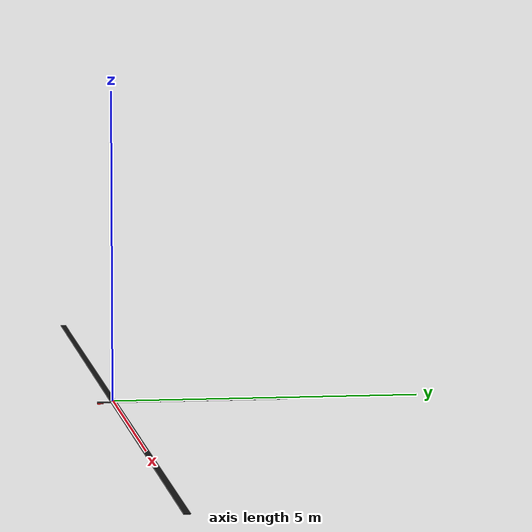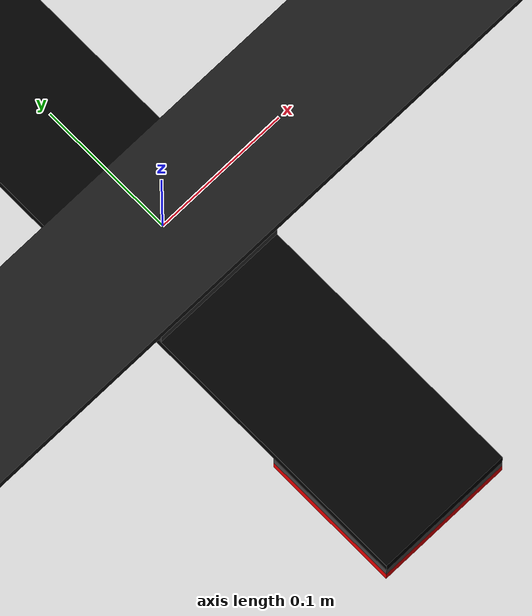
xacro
<?xml version="1.0"?>
<robot name="ceiling_robot" xmlns:xacro="http://wiki.ros.org/xacro">

	<xacro:arg name="prefix" default="" />
	<xacro:arg name="hardware_interface" default="PositionJointInterface"/>

	<xacro:property name="PI" value="3.1415926535897931" />

	<xacro:include filename="$(find ceiling_arm_description)/urdf/ceiling_base.urdf.xacro" />

	<link name="world">
	</link>

	<xacro:ceiling_base prefix="$(arg prefix)" parent="world" hardware_interface="$(arg hardware_interface)" >
		<origin xyz="0.0 0.0 0.0" rpy="0.0 0.0 0.0"/>
	</xacro:ceiling_base>

	<xacro:ros_control />

</robot>

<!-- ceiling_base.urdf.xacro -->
<robot name="robot_ceiling_base" xmlns:xacro="http://wiki.ros.org/xacro">

    <xacro:property name="PI" value="3.1415926535897931" />

    <xacro:macro name="ceiling_base" params="prefix parent hardware_interface:=PositionJointInterface *origin">

        <link name="${prefix}base_long_link">
            <inertial>
                <mass value="1.0" />
                <origin xyz="0 0 0" />
                <inertia ixx="1" ixy="0" ixz="0.0" iyy="0.02" iyz="0.0" izz="0.02" />
            </inertial>
            <visual>
                <origin xyz="0 0 0" rpy="0 0 0" />
                <geometry>
                    <box size="20.0 0.1 0.01" />
                </geometry>
                <material name="Grey">
                    <color rgba="0.1 0.1 0.1 1" />
                </material>
            </visual>
            <collision>
                <origin xyz="0 0 0" rpy="0 0 0 " />
                <geometry>
                    <box size="20.0 0.1 0.01" />
                </geometry>
            </collision>
        </link>

        <gazebo reference="${prefix}base_long_link">
            <material>Gazebo/Gray</material>
        </gazebo>

        <link name="${prefix}long_link">
            <inertial>
                <mass value="1.0" />
                <origin xyz="0 0 0" />
                <inertia ixx="0.02" ixy="0" ixz="0.0" iyy="0.02" iyz="0.0" izz="0.02" />
            </inertial>
            <visual>
                <origin xyz="0 0 0" rpy="0 0 0" />
                <geometry>
                    <box size="0.1 0.1 0.01" />
                </geometry>
                <material name="Grey2">
                    <color rgba="0.2 0.2 0.2 1" />
                </material>
            </visual>
            <collision>
                <origin xyz="0 0 0" rpy="0 0 0 " />
                <geometry>
                    <box size="0.1 0.1 0.01" />
                </geometry>
            </collision>
        </link>

        <link name="${prefix}base_short_link">
            <inertial>
                <mass value="1.0" />
                <origin xyz="0 0 0" />
                <inertia ixx="0.5" ixy="0" ixz="0.0" iyy="0.02" iyz="0.0" izz="0.02" />
            </inertial>
            <visual>
                <origin xyz="1.3 0 0" rpy="0 0 0" />
                <geometry>
                    <box size="3.1 0.1 0.01" />
                </geometry>
                <material name="Grey">
                    <color rgba="0.0 0.0 0.0 1" />
                </material>
            </visual>
            <collision>
                <origin xyz="1.3 0 0" rpy="0 0 0 " />
                <geometry>
                    <box size="3.1 0.1 0.01" />
                </geometry>
            </collision>
        </link>

        <gazebo reference="${prefix}base_short_link">
            <material>Gazebo/Gray</material>
        </gazebo>

        <link name="${prefix}short_link">
            <inertial>
                <mass value="1.0" />
                <origin xyz="0 0 0" />
                <inertia ixx="0.5" ixy="0" ixz="0.0" iyy="0.02" iyz="0.0" izz="0.02" />
            </inertial>
            <visual>
                <origin xyz="0 0 0" rpy="0 0 0" />
                <geometry>
                    <box size="0.1 0.1 0.01" />
                </geometry>
                <material name="Grey2">
                    <color rgba="0.3 0.3 0.3 1" />
                </material>
            </visual>
            <collision>
                <origin xyz="0 0 0" rpy="0 0 0 " />
                <geometry>
                    <box size="0.1 0.1 0.01" />
                </geometry>
            </collision>
        </link>

        <link name="${prefix}connector_link">
            <inertial>
                <mass value="1.0" />
                <origin xyz="0 0 0" />
                <inertia ixx="1e-6" ixy="0" ixz="0.0" iyy="1e-6" iyz="0.0" izz="1e-6" />
            </inertial>
            <visual>
                <origin xyz="0 0 0" rpy="0 0 0" />
                <geometry>
                    <box size="0.1 0.1 0.01" />
                </geometry>
                <material name="Red">
                    <color rgba="1.0 0.0 0.0 1" />
                </material>
            </visual>
            <collision>
                <origin xyz="0 0 0" rpy="0 0 0 " />
                <geometry>
                    <box size="0.1 0.1 0.01" />
                </geometry>
            </collision>
        </link>

        <joint name="${prefix}base_joint" type="fixed">
            <xacro:insert_block name="origin" />
            <parent link="${parent}" />
            <child link="${prefix}base_long_link" />
        </joint>

        <joint name="${prefix}long_joint" type="prismatic">
            <origin rpy="0 0 0" xyz="0 0.0 -0.01" />
            <parent link="${prefix}base_long_link" />
            <child link="${prefix}long_link" />
            <dynamics damping="1" friction="1"/>
            <limit effort="300" velocity="5.0" lower="-10" upper="10" />
            <axis xyz="1 0 0" />
        </joint>

        <joint name="${prefix}base_short_joint" type="fixed">
            <origin rpy="0 0 ${PI/2}" xyz="0 0.0 -0.01" />
            <parent link="${prefix}long_link" />
            <child link="${prefix}base_short_link" />
        </joint>

        <joint name="${prefix}short_joint" type="prismatic">
            <origin rpy="0 0 -${PI/2}" xyz="-0.2 0.0 -0.01" />
            <parent link="${prefix}base_short_link" />
            <child link="${prefix}short_link" />
            <dynamics damping="1" friction="1"/>
            <limit effort="300" velocity="5.0" lower="0.0" upper="5.0" />
            <axis xyz="0 1 0" />
        </joint>

        <joint name="${prefix}connector_joint" type="fixed">
            <origin rpy="0 0 0" xyz="0 0 -0.01" />
            <parent link="${prefix}short_link" />
            <child link="${prefix}connector_link" />
        </joint>

        <transmission name="${prefix}long_joint_trans">
            <type>transmission_interface/SimpleTransmission</type>
            <joint name="${prefix}long_joint">
                <hardwareInterface>hardware_interface/${hardware_interface}</hardwareInterface>
            </joint>
            <actuator name="${prefix}long_motor">
                <mechanicalReduction>1</mechanicalReduction>
            </actuator>
        </transmission>
        <transmission name="${prefix}short_joint_trans">
            <type>transmission_interface/SimpleTransmission</type>
            <joint name="${prefix}short_joint">
                <hardwareInterface>hardware_interface/${hardware_interface}</hardwareInterface>
            </joint>
            <actuator name="${prefix}short_motor">
                <mechanicalReduction>1</mechanicalReduction>
            </actuator>
        </transmission>

    </xacro:macro>

    <xacro:macro name="ros_control">
        <gazebo>
            <plugin name="ros_control" filename="libgazebo_ros_control.so">
                <robotParam>robot_description</robotParam>
                <controlPeriod>0.001</controlPeriod>
                <robotSimType>gazebo_ros_control/DefaultRobotHWSim</robotSimType>
                <legacyModeNS>true</legacyModeNS>
            </plugin>
        </gazebo>
    </xacro:macro>

</robot>
